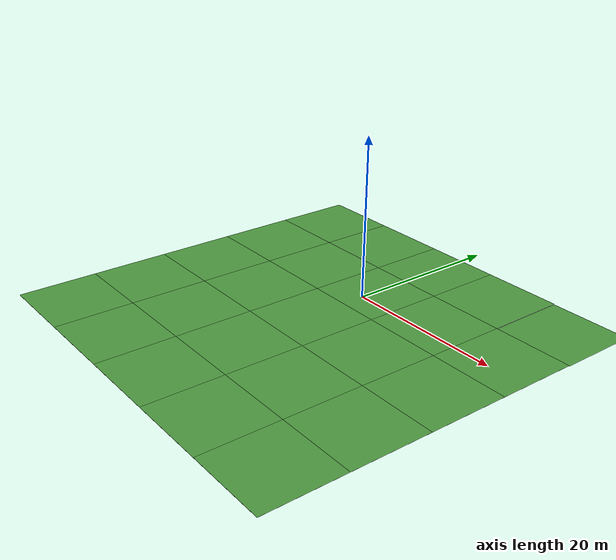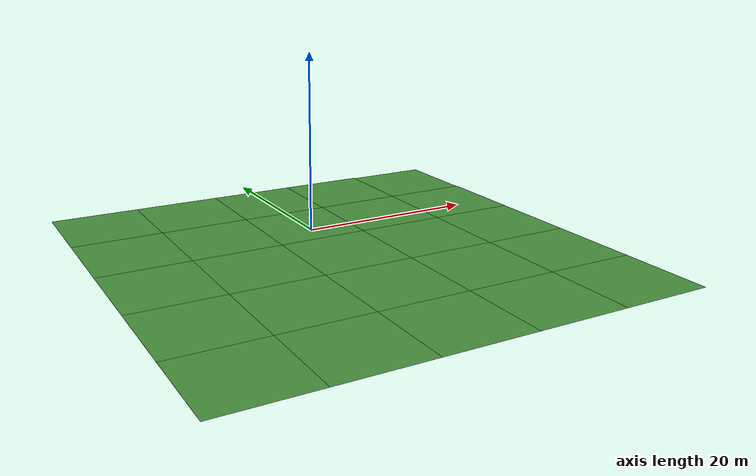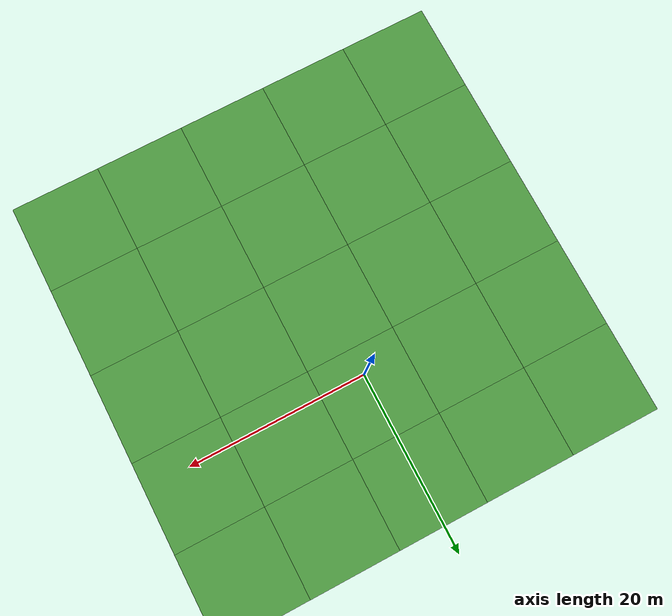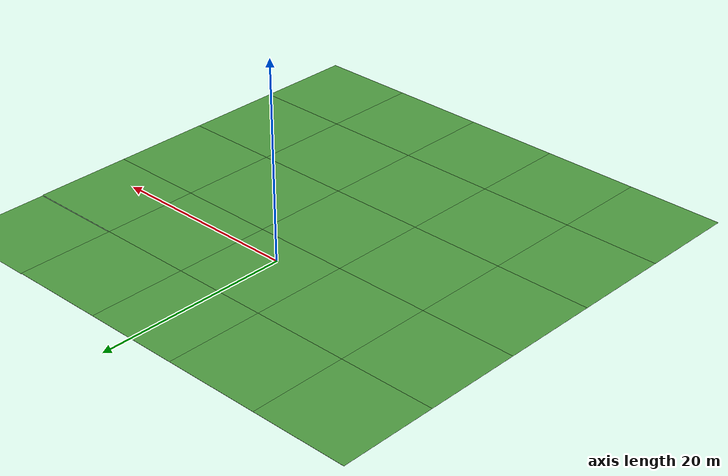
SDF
<sdf version="1.4">
 <world name="vrc_task_1">
  <scene><ambient>0.5 0.5 0.5 1.0</ambient><grid>true</grid><sky><clouds><speed>4</speed></clouds></sky></scene>
  <physics type="ode">
   <gravity>0 0 -9.81</gravity>
   <ode>
    <solver>
     <use_dynamic_moi_rescaling>true</use_dynamic_moi_rescaling>
     <type>quick</type>
     <iters>50</iters>
     <sor>1.0</sor>
    </solver>
    <constraints>
     <cfm>0.0</cfm>
     <erp>0.2</erp>
     <contact_max_correcting_vel>100.0</contact_max_correcting_vel>
     <contact_surface_layer>0.0</contact_surface_layer>
    </constraints>
   </ode>
   <real_time_update_rate>1000</real_time_update_rate>
   <max_step_size>0.001</max_step_size>
  </physics>
  <light type="directional" name="sun">
   <cast_shadows>false</cast_shadows>
   <pose>0 0 100 0 0 0</pose>
   <diffuse>0.8 0.8 0.8 1</diffuse>
   <specular>0.9 0.9 0.9 1</specular>
   <attenuation>
    <range>1000</range>
    <constant>0.9</constant>
    <linear>0.01</linear>
    <quadratic>0.001</quadratic>
   </attenuation>
   <direction>0 0 -1</direction>
  </light>
  <include><uri>model://grass_plane_medium</uri><pose>0 -8 0 0 -0 3.14</pose></include>
  <plugin name="ardupilot_sitl_gazebo_plugin" filename="libardupilot_sitl_gazebo_plugin.so"/>
 </world>
</sdf>

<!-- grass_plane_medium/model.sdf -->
<sdf version='1.4'>
  <model name='grass_plan_medium'>
    <static>true</static>
    <link name='link'>
      <collision name='collision'>
        <geometry>
          <plane>
            <normal>0 0 1</normal>
            <size>50 50</size>
          </plane>
        </geometry>
        <surface>
          <friction>
            <ode>
              <mu>0.5</mu>
              <mu2>.5</mu2>
            </ode>
          </friction>
        </surface>
      </collision>

      <visual name='visual_0'>
        <pose>-20 -20 0 0 0 0</pose>

        <cast_shadows>false</cast_shadows>
        <geometry>
          <plane>
            <normal>0 0 1</normal>
            <size>10 10</size>
          </plane>
        </geometry>
        <material>
          <script>
            <uri>model://grass_plane/materials/scripts</uri>
            <uri>model://grass_plane/materials/textures</uri>
            <name>vrc/grass</name>
          </script>
        </material>
      </visual>

      <visual name='visual_1'>
        <pose>-10 -20 0 0 0 0</pose>

        <cast_shadows>false</cast_shadows>
        <geometry>
          <plane>
            <normal>0 0 1</normal>
            <size>10 10</size>
          </plane>
        </geometry>
        <material>
          <script>
            <uri>model://grass_plane/materials/scripts</uri>
            <uri>model://grass_plane/materials/textures</uri>
            <name>vrc/grass</name>
          </script>
        </material>
      </visual>

      <visual name='visual_2'>
        <pose>0 -20 0 0 0 0</pose>

        <cast_shadows>false</cast_shadows>
        <geometry>
          <plane>
            <normal>0 0 1</normal>
            <size>10 10</size>
          </plane>
        </geometry>
        <material>
          <script>
            <uri>model://grass_plane/materials/scripts</uri>
            <uri>model://grass_plane/materials/textures</uri>
            <name>vrc/grass</name>
          </script>
        </material>
      </visual>

      <visual name='visual_3'>
        <pose>10 -20 0 0 0 0</pose>

        <cast_shadows>false</cast_shadows>
        <geometry>
          <plane>
            <normal>0 0 1</normal>
            <size>10 10</size>
          </plane>
        </geometry>
        <material>
          <script>
            <uri>model://grass_plane/materials/scripts</uri>
            <uri>model://grass_plane/materials/textures</uri>
            <name>vrc/grass</name>
          </script>
        </material>
      </visual>

      <visual name='visual_4'>
        <pose>20 -20 0 0 0 0</pose>

        <cast_shadows>false</cast_shadows>
        <geometry>
          <plane>
            <normal>0 0 1</normal>
            <size>10 10</size>
          </plane>
        </geometry>
        <material>
          <script>
            <uri>model://grass_plane/materials/scripts</uri>
            <uri>model://grass_plane/materials/textures</uri>
            <name>vrc/grass</name>
          </script>
        </material>
      </visual>

      <visual name='visual_6'>
        <pose>-20 -10 0 0 0 0</pose>

        <cast_shadows>false</cast_shadows>
        <geometry>
          <plane>
            <normal>0 0 1</normal>
            <size>10 10</size>
          </plane>
        </geometry>
        <material>
          <script>
            <uri>model://grass_plane/materials/scripts</uri>
            <uri>model://grass_plane/materials/textures</uri>
            <name>vrc/grass</name>
          </script>
        </material>
      </visual>

      <visual name='visual_7'>
        <pose>-10 -10 0 0 0 0</pose>

        <cast_shadows>false</cast_shadows>
        <geometry>
          <plane>
            <normal>0 0 1</normal>
            <size>10 10</size>
          </plane>
        </geometry>
        <material>
          <script>
            <uri>model://grass_plane/materials/scripts</uri>
            <uri>model://grass_plane/materials/textures</uri>
            <name>vrc/grass</name>
          </script>
        </material>
      </visual>

      <visual name='visual_8'>
        <pose>0 -10 0 0 0 0</pose>

        <cast_shadows>false</cast_shadows>
        <geometry>
          <plane>
            <normal>0 0 1</normal>
            <size>10 10</size>
          </plane>
        </geometry>
        <material>
          <script>
            <uri>model://grass_plane/materials/scripts</uri>
            <uri>model://grass_plane/materials/textures</uri>
            <name>vrc/grass</name>
          </script>
        </material>
      </visual>

      <visual name='visual_9'>
        <pose>10 -10 0 0 0 0</pose>

        <cast_shadows>false</cast_shadows>
        <geometry>
          <plane>
            <normal>0 0 1</normal>
            <size>10 10</size>
          </plane>
        </geometry>
        <material>
          <script>
            <uri>model://grass_plane/materials/scripts</uri>
            <uri>model://grass_plane/materials/textures</uri>
            <name>vrc/grass</name>
          </script>
        </material>
      </visual>

      <visual name='visual_10'>
        <pose>20 -10 0 0 0 0</pose>

        <cast_shadows>false</cast_shadows>
        <geometry>
          <plane>
            <normal>0 0 1</normal>
            <size>10 10</size>
          </plane>
        </geometry>
        <material>
          <script>
            <uri>model://grass_plane/materials/scripts</uri>
            <uri>model://grass_plane/materials/textures</uri>
            <name>vrc/grass</name>
          </script>
        </material>
      </visual>

      <visual name='visual_13'>
        <pose>-20 0 0 0 0 0</pose>

        <cast_shadows>false</cast_shadows>
        <geometry>
          <plane>
            <normal>0 0 1</normal>
            <size>10 10</size>
          </plane>
        </geometry>
        <material>
          <script>
            <uri>model://grass_plane/materials/scripts</uri>
            <uri>model://grass_plane/materials/textures</uri>
            <name>vrc/grass</name>
          </script>
        </material>
      </visual>

      <visual name='visual_14'>
        <pose>-10 0 0 0 0 0</pose>

        <cast_shadows>false</cast_shadows>
        <geometry>
          <plane>
            <normal>0 0 1</normal>
            <size>10 10</size>
          </plane>
        </geometry>
        <material>
          <script>
            <uri>model://grass_plane/materials/scripts</uri>
            <uri>model://grass_plane/materials/textures</uri>
            <name>vrc/grass</name>
          </script>
        </material>
      </visual>

      <visual name='visual_15'>
        <pose>0 0 0 0 0 0</pose>

        <cast_shadows>false</cast_shadows>
        <geometry>
          <plane>
            <normal>0 0 1</normal>
            <size>10 10</size>
          </plane>
        </geometry>
        <material>
          <script>
            <uri>model://grass_plane/materials/scripts</uri>
            <uri>model://grass_plane/materials/textures</uri>
            <name>vrc/grass</name>
          </script>
        </material>
      </visual>

      <visual name='visual_16'>
        <pose>10 0 0 0 0 0</pose>

        <cast_shadows>false</cast_shadows>
        <geometry>
          <plane>
            <normal>0 0 1</normal>
            <size>10 10</size>
          </plane>
        </geometry>
        <material>
          <script>
            <uri>model://grass_plane/materials/scripts</uri>
            <uri>model://grass_plane/materials/textures</uri>
            <name>vrc/grass</name>
          </script>
        </material>
      </visual>

      <visual name='visual_17'>
        <pose>20 0 0 0 0 0</pose>

        <cast_shadows>false</cast_shadows>
        <geometry>
          <plane>
            <normal>0 0 1</normal>
            <size>10 10</size>
          </plane>
        </geometry>
        <material>
          <script>
            <uri>model://grass_plane/materials/scripts</uri>
            <uri>model://grass_plane/materials/textures</uri>
            <name>vrc/grass</name>
          </script>
        </material>
      </visual>

      <visual name='visual_22'>
        <pose>-20 10 0 0 0 0</pose>

        <cast_shadows>false</cast_shadows>
        <geometry>
          <plane>
            <normal>0 0 1</normal>
            <size>10 10</size>
          </plane>
        </geometry>
        <material>
          <script>
            <uri>model://grass_plane/materials/scripts</uri>
            <uri>model://grass_plane/materials/textures</uri>
            <name>vrc/grass</name>
          </script>
        </material>
      </visual>

      <visual name='visual_23'>
        <pose>-10 10 0 0 0 0</pose>

        <cast_shadows>false</cast_shadows>
        <geometry>
          <plane>
            <normal>0 0 1</normal>
            <size>10 10</size>
          </plane>
        </geometry>
        <material>
          <script>
            <uri>model://grass_plane/materials/scripts</uri>
            <uri>model://grass_plane/materials/textures</uri>
            <name>vrc/grass</name>
          </script>
        </material>
      </visual>

      <visual name='visual_24'>
        <pose>0 10 0 0 0 0</pose>

        <cast_shadows>false</cast_shadows>
        <geometry>
          <plane>
            <normal>0 0 1</normal>
            <size>10 10</size>
          </plane>
        </geometry>
        <material>
          <script>
            <uri>model://grass_plane/materials/scripts</uri>
            <uri>model://grass_plane/materials/textures</uri>
            <name>vrc/grass</name>
          </script>
        </material>
      </visual>

      <visual name='visual_25'>
        <pose>10 10 0 0 0 0</pose>

        <cast_shadows>false</cast_shadows>
        <geometry>
          <plane>
            <normal>0 0 1</normal>
            <size>10 10</size>
          </plane>
        </geometry>
        <material>
          <script>
            <uri>model://grass_plane/materials/scripts</uri>
            <uri>model://grass_plane/materials/textures</uri>
            <name>vrc/grass</name>
          </script>
        </material>
      </visual>

      <visual name='visual_26'>
        <pose>20 10 0 0 0 0</pose>

        <cast_shadows>false</cast_shadows>
        <geometry>
          <plane>
            <normal>0 0 1</normal>
            <size>10 10</size>
          </plane>
        </geometry>
        <material>
          <script>
            <uri>model://grass_plane/materials/scripts</uri>
            <uri>model://grass_plane/materials/textures</uri>
            <name>vrc/grass</name>
          </script>
        </material>
      </visual>

    <visual name='visual_22b'>
        <pose>-20 20 0 0 0 0</pose>

        <cast_shadows>false</cast_shadows>
        <geometry>
          <plane>
            <normal>0 0 1</normal>
            <size>10 10</size>
          </plane>
        </geometry>
        <material>
          <script>
            <uri>model://grass_plane/materials/scripts</uri>
            <uri>model://grass_plane/materials/textures</uri>
            <name>vrc/grass</name>
          </script>
        </material>
      </visual>

      <visual name='visual_23b'>
        <pose>-10 20 0 0 0 0</pose>

        <cast_shadows>false</cast_shadows>
        <geometry>
          <plane>
            <normal>0 0 1</normal>
            <size>10 10</size>
          </plane>
        </geometry>
        <material>
          <script>
            <uri>model://grass_plane/materials/scripts</uri>
            <uri>model://grass_plane/materials/textures</uri>
            <name>vrc/grass</name>
          </script>
        </material>
      </visual>

      <visual name='visual_24b'>
        <pose>0 20 0 0 0 0</pose>

        <cast_shadows>false</cast_shadows>
        <geometry>
          <plane>
            <normal>0 0 1</normal>
            <size>10 10</size>
          </plane>
        </geometry>
        <material>
          <script>
            <uri>model://grass_plane/materials/scripts</uri>
            <uri>model://grass_plane/materials/textures</uri>
            <name>vrc/grass</name>
          </script>
        </material>
      </visual>

      <visual name='visual_25b'>
        <pose>10 20 0 0 0 0</pose>

        <cast_shadows>false</cast_shadows>
        <geometry>
          <plane>
            <normal>0 0 1</normal>
            <size>10 10</size>
          </plane>
        </geometry>
        <material>
          <script>
            <uri>model://grass_plane/materials/scripts</uri>
            <uri>model://grass_plane/materials/textures</uri>
            <name>vrc/grass</name>
          </script>
        </material>
      </visual>

      <visual name='visual_32'>
        <pose>20 20 0 0 0 0</pose>

        <cast_shadows>false</cast_shadows>
        <geometry>
          <plane>
            <normal>0 0 1</normal>
            <size>10 10</size>
          </plane>
        </geometry>
        <material>
          <script>
            <uri>model://grass_plane/materials/scripts</uri>
            <uri>model://grass_plane/materials/textures</uri>
            <name>vrc/grass</name>
          </script>
        </material>
      </visual>
    </link>
  </model>
</sdf>
